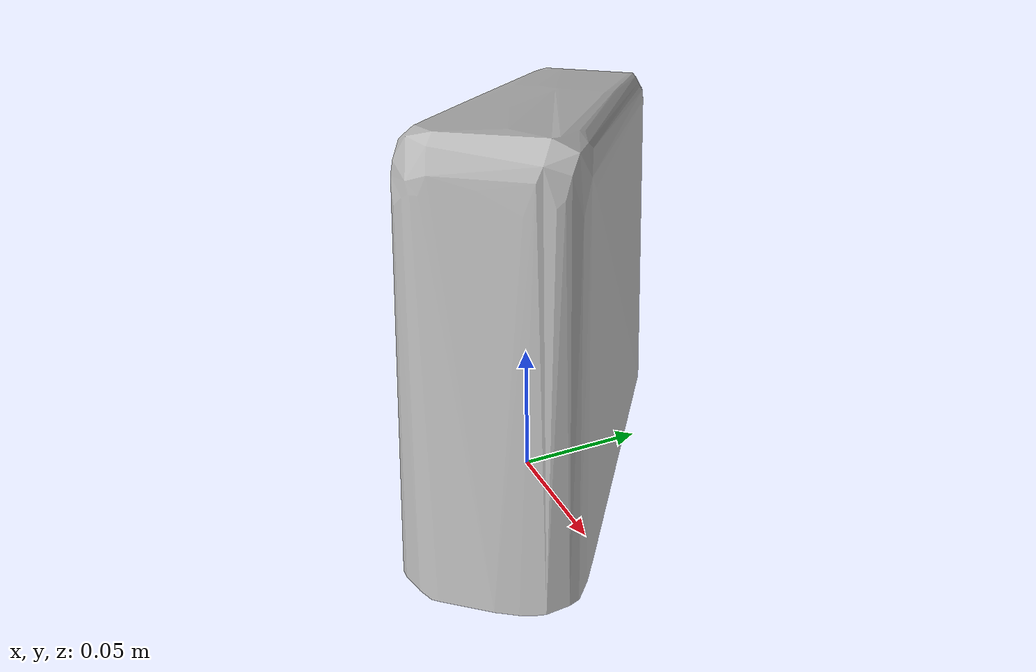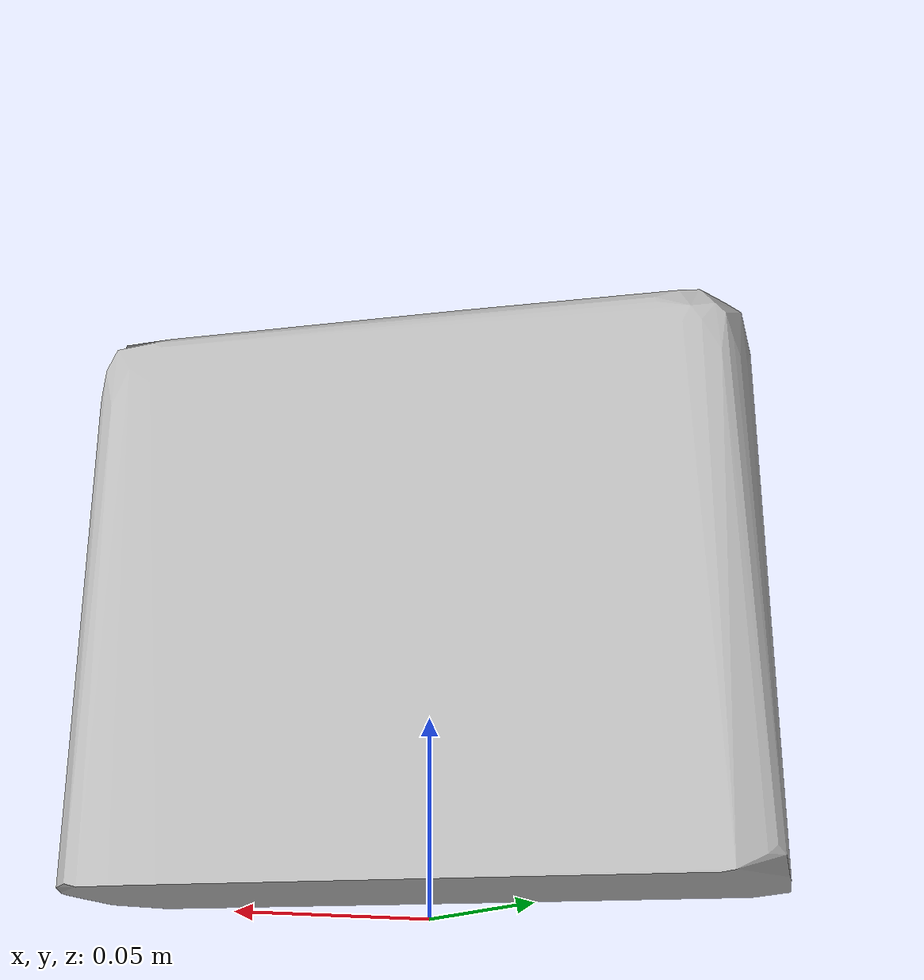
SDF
<?xml version='1.0'?>
<sdf version="1.4">
  <model name="nutrigrain_chotolatey_crunch">
    <static>false</static>
    <link name="link">
      <inertial>
        <pose>0.0048976579004125186 0.0060457719550233175 0.07509001867925873 1.5669390895952653 -0.009373412159962406 -2.228505939278299</pose>
        <mass>0.1332628862667601</mass>
        <inertia>
          <ixx>0.0005327498931675088</ixx>
          <ixy>-2.23272231526953e-21</ixy>
          <ixz>-1.0459662173912757e-21</ixz>
          <iyy>0.0003441024773212619</iyy>
          <iyz>1.4539317107284467e-21</iyz>
          <izz>0.00025659797568985216</izz>
        </inertia>
      </inertial>
      <collision name="collision">
        <geometry>
          <mesh>
            <!-- Use a downsampled mesh for collisions -->
            <uri>model:///nutrigrain_chotolatey_crunch/nutrigrain_chotolatey_crunch_250_collision.obj</uri>
	        </mesh>
        </geometry>
        <surface>
      </surface>
      </collision>
      <visual name="visual">
        <geometry>
          <mesh>
            <uri>model:///nutrigrain_chotolatey_crunch/optimized_tsdf_texture_mapped_mesh.obj</uri>
	        </mesh>
        </geometry>
        <material>
          <script>
            <uri>model:///nutrigrain_chotolatey_crunch/nutrigrain_chotolatey_crunch.material</uri>
            <name>nutrigrain_chotolatey_crunch</name>
          </script>
        </material>
      </visual>
    </link>
  </model>
</sdf>
